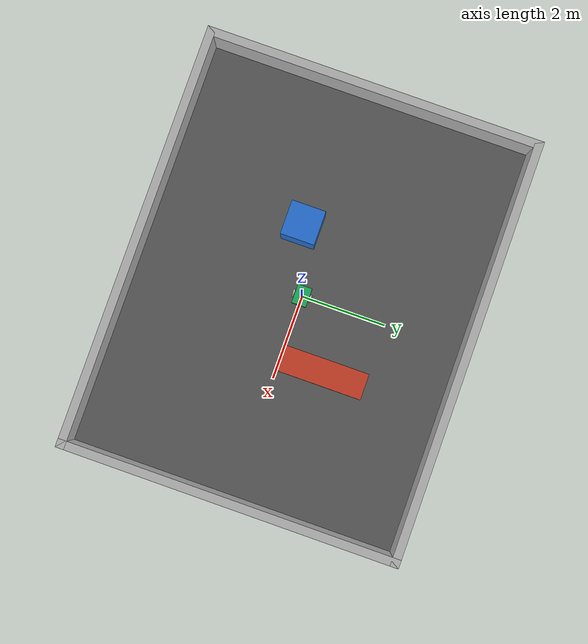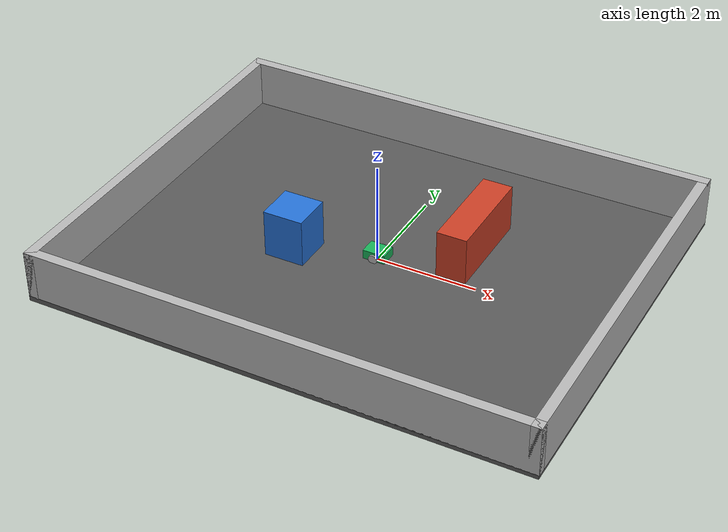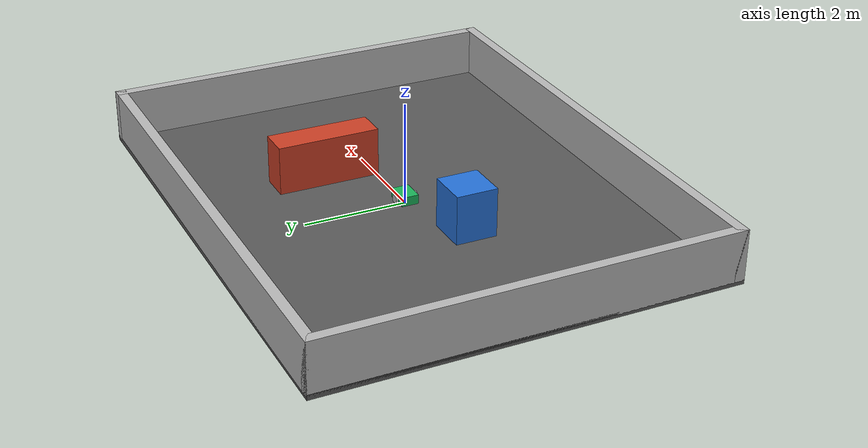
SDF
<?xml version="1.0"?>
<sdf version="1.8">
  <world name="synthetic_room">
    <physics name="1ms" type="ignored"><max_step_size>0.001</max_step_size><real_time_factor>1.0</real_time_factor></physics>
    <plugin filename="libignition-gazebo-physics-system.so" name="ignition::gazebo::systems::Physics"/>
    <plugin filename="libignition-gazebo-user-commands-system.so" name="ignition::gazebo::systems::UserCommands"/>
    <plugin filename="libignition-gazebo-scene-broadcaster-system.so" name="ignition::gazebo::systems::SceneBroadcaster"/>
    <plugin filename="libignition-gazebo-sensors-system.so" name="ignition::gazebo::systems::Sensors"><render_engine>ogre2</render_engine></plugin>
    <light type="directional" name="sun"><pose>0 0 10 0 0 0</pose><diffuse>0.8 0.8 0.8 1</diffuse><direction>-0.5 0.1 -0.9</direction></light>

    <model name="floor"><static>true</static><link name="floor_link"><collision name="collision"><geometry><box><size>10 8 0.1</size></box></geometry></collision><visual name="visual"><geometry><box><size>10 8 0.1</size></box></geometry><material><ambient>0.35 0.35 0.35 1</ambient></material></visual></link></model>
    <model name="walls"><static>true</static><link name="walls_link">
      <collision name="north"><pose>0 3.9 0.5 0 0 0</pose><geometry><box><size>10 0.2 1</size></box></geometry></collision>
      <collision name="south"><pose>0 -3.9 0.5 0 0 0</pose><geometry><box><size>10 0.2 1</size></box></geometry></collision>
      <collision name="east"><pose>4.9 0 0.5 0 0 0</pose><geometry><box><size>0.2 8 1</size></box></geometry></collision>
      <collision name="west"><pose>-4.9 0 0.5 0 0 0</pose><geometry><box><size>0.2 8 1</size></box></geometry></collision>
      <visual name="north_v"><pose>0 3.9 0.5 0 0 0</pose><geometry><box><size>10 0.2 1</size></box></geometry></visual>
      <visual name="south_v"><pose>0 -3.9 0.5 0 0 0</pose><geometry><box><size>10 0.2 1</size></box></geometry></visual>
      <visual name="east_v"><pose>4.9 0 0.5 0 0 0</pose><geometry><box><size>0.2 8 1</size></box></geometry></visual>
      <visual name="west_v"><pose>-4.9 0 0.5 0 0 0</pose><geometry><box><size>0.2 8 1</size></box></geometry></visual>
    </link></model>
    <model name="obstacle_a"><static>true</static><pose>1.5 1.0 0.5 0 0 0</pose><link name="link"><collision name="collision"><geometry><box><size>0.6 2.0 1</size></box></geometry></collision><visual name="visual"><geometry><box><size>0.6 2.0 1</size></box></geometry><material><ambient>0.8 0.25 0.15 1</ambient></material></visual></link></model>
    <model name="obstacle_b"><static>true</static><pose>-1.5 -0.5 0.5 0 0 0</pose><link name="link"><collision name="collision"><geometry><box><size>0.8 0.8 1</size></box></geometry></collision><visual name="visual"><geometry><box><size>0.8 0.8 1</size></box></geometry><material><ambient>0.15 0.45 0.85 1</ambient></material></visual></link></model>

    <model name="planar_base"><pose>0 0 0.15 0 0 0</pose>
      <link name="base_link"><inertial><mass>12</mass><inertia><ixx>0.25</ixx><iyy>0.3</iyy><izz>0.35</izz></inertia></inertial><collision name="collision"><geometry><box><size>0.45 0.34 0.18</size></box></geometry></collision><visual name="visual"><geometry><box><size>0.45 0.34 0.18</size></box></geometry><material><ambient>0.1 0.7 0.35 1</ambient></material></visual>
        <sensor name="lidar" type="gpu_lidar"><topic>/phanthymotus_sim_nav/gz_scan</topic><update_rate>10</update_rate><pose>0.12 0 0.18 0 0 0</pose><lidar><scan><horizontal><samples>360</samples><resolution>1</resolution><min_angle>-3.14159265</min_angle><max_angle>3.14159265</max_angle></horizontal></scan><range><min>0.12</min><max>12.0</max><resolution>0.02</resolution></range></lidar></sensor>
      </link>
      <link name="left_wheel"><pose>0 0.20 -0.03 -1.5707963 0 0</pose><inertial><mass>0.5</mass><inertia><ixx>0.002</ixx><iyy>0.002</iyy><izz>0.002</izz></inertia></inertial><collision name="collision"><geometry><cylinder><radius>0.09</radius><length>0.04</length></cylinder></geometry></collision><visual name="visual"><geometry><cylinder><radius>0.09</radius><length>0.04</length></cylinder></geometry></visual></link>
      <link name="right_wheel"><pose>0 -0.20 -0.03 -1.5707963 0 0</pose><inertial><mass>0.5</mass><inertia><ixx>0.002</ixx><iyy>0.002</iyy><izz>0.002</izz></inertia></inertial><collision name="collision"><geometry><cylinder><radius>0.09</radius><length>0.04</length></cylinder></geometry></collision><visual name="visual"><geometry><cylinder><radius>0.09</radius><length>0.04</length></cylinder></geometry></visual></link>
      <joint name="left_wheel_joint" type="revolute"><parent>base_link</parent><child>left_wheel</child><axis><xyz>0 0 1</xyz></axis></joint>
      <joint name="right_wheel_joint" type="revolute"><parent>base_link</parent><child>right_wheel</child><axis><xyz>0 0 1</xyz></axis></joint>
      <!-- Fortress 6.18 wheel axes are locked by the live cmd_vel-to-odom sign acceptance. -->
      <plugin filename="libignition-gazebo-diff-drive-system.so" name="ignition::gazebo::systems::DiffDrive"><left_joint>left_wheel_joint</left_joint><right_joint>right_wheel_joint</right_joint><wheel_separation>0.4</wheel_separation><wheel_radius>0.09</wheel_radius><topic>/phanthymotus_sim_nav/gz_cmd_vel</topic><odom_topic>/phanthymotus_sim_nav/gz_odom</odom_topic><tf_topic>/phanthymotus_sim_nav/gz_tf</tf_topic><odom_publish_frequency>30</odom_publish_frequency></plugin>
    </model>
  </world>
</sdf>
